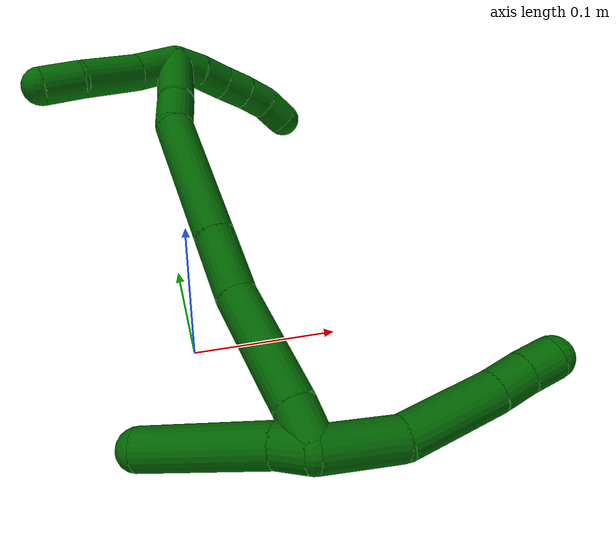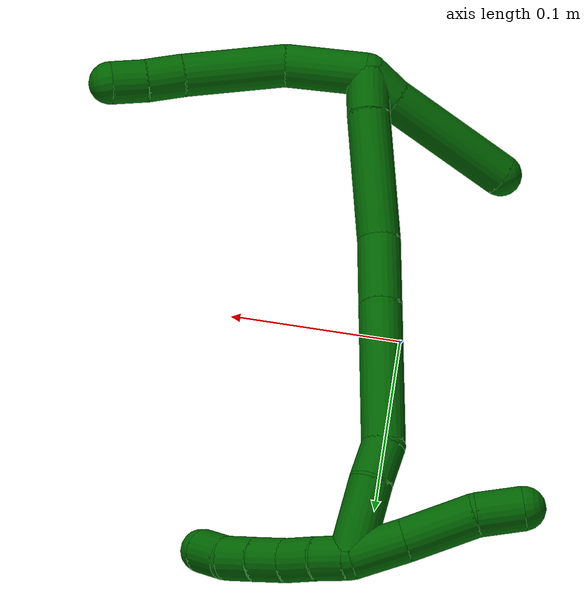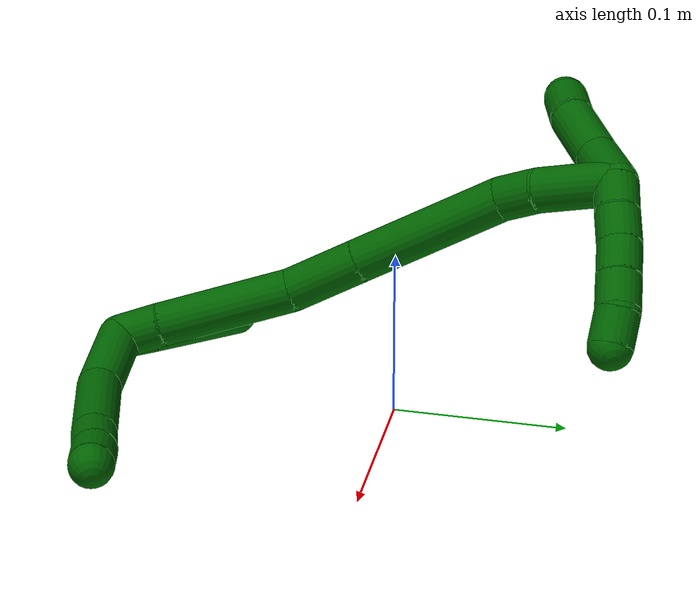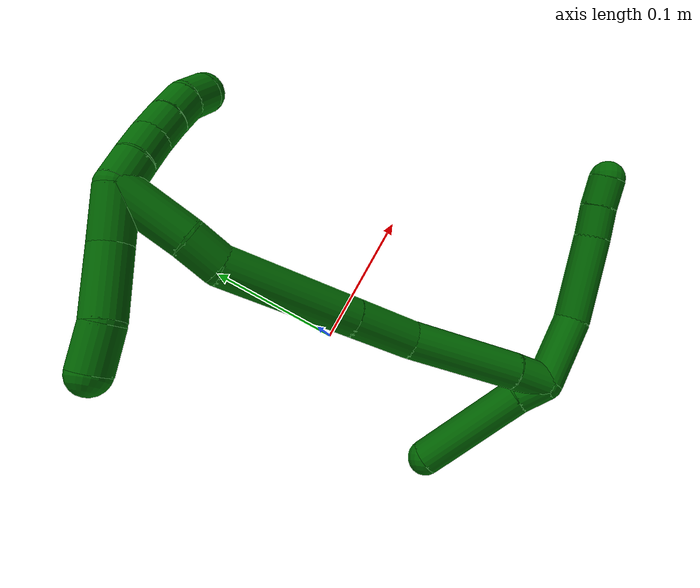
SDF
<sdf version="1.7">
 <world name="default">
  <model name="6">
   <static>0</static>
   <link name="6">
    <collision name="collision-cylinder-e_1_2_8">
     <pose>0.006693 -0.003443 -0.022748 2.99137 0.283094 2.16987</pose>
     <geometry><cylinder><radius>0.0125</radius><length>0.047922</length></cylinder></geometry>
     <surface>
      <friction><ode><mu>1.16</mu><mu2>1.16</mu2><slip1>0</slip1><slip2>0</slip2></ode></friction>
      <contact><ode><kp>1e+06</kp><kd>1</kd><max_vel>0</max_vel><min_depth>0.001</min_depth></ode></contact>
     </surface>
    </collision>
    <visual name="visual-cylinder-e_1_2_8">
     <pose>0.006693 -0.003443 -0.022748 2.99137 0.283094 2.16987</pose>
     <geometry><cylinder><radius>0.0125</radius><length>0.047922</length></cylinder></geometry>
     <material><ambient>0 0.392157 0.003922 1</ambient></material>
    </visual>
    <collision name="collision-cylinder-e_2_8_9">
     <pose>0.021248 -0.002167 -0.073855 -2.97668 0.266931 -2.03809</pose>
     <geometry><cylinder><radius>0.0125</radius><length>0.059608</length></cylinder></geometry>
     <surface>
      <friction><ode><mu>1.16</mu><mu2>1.16</mu2><slip1>0</slip1><slip2>0</slip2></ode></friction>
      <contact><ode><kp>1e+06</kp><kd>1</kd><max_vel>0</max_vel><min_depth>0.001</min_depth></ode></contact>
     </surface>
    </collision>
    <visual name="visual-cylinder-e_2_8_9">
     <pose>0.021248 -0.002167 -0.073855 -2.97668 0.266931 -2.03809</pose>
     <geometry><cylinder><radius>0.0125</radius><length>0.059608</length></cylinder></geometry>
     <material><ambient>0 0.392157 0.003922 1</ambient></material>
    </visual>
    <collision name="collision-cylinder-e_3_9_10">
     <pose>0.031934 0.005125 -0.112426 -2.89486 0.26207 -1.63172</pose>
     <geometry><cylinder><radius>0.0125</radius><length>0.021807</length></cylinder></geometry>
     <surface>
      <friction><ode><mu>1.16</mu><mu2>1.16</mu2><slip1>0</slip1><slip2>0</slip2></ode></friction>
      <contact><ode><kp>1e+06</kp><kd>1</kd><max_vel>0</max_vel><min_depth>0.001</min_depth></ode></contact>
     </surface>
    </collision>
    <visual name="visual-cylinder-e_3_9_10">
     <pose>0.031934 0.005125 -0.112426 -2.89486 0.26207 -1.63172</pose>
     <geometry><cylinder><radius>0.0125</radius><length>0.021807</length></cylinder></geometry>
     <material><ambient>0 0.392157 0.003922 1</ambient></material>
    </visual>
    <collision name="collision-cylinder-e_4_10_6">
     <pose>0.038196 0.009683 -0.132176 -2.93632 0.339128 -2.05841</pose>
     <geometry><cylinder><radius>0.0125</radius><length>0.020663</length></cylinder></geometry>
     <surface>
      <friction><ode><mu>1.16</mu><mu2>1.16</mu2><slip1>0</slip1><slip2>0</slip2></ode></friction>
      <contact><ode><kp>1e+06</kp><kd>1</kd><max_vel>0</max_vel><min_depth>0.001</min_depth></ode></contact>
     </surface>
    </collision>
    <visual name="visual-cylinder-e_4_10_6">
     <pose>0.038196 0.009683 -0.132176 -2.93632 0.339128 -2.05841</pose>
     <geometry><cylinder><radius>0.0125</radius><length>0.020663</length></cylinder></geometry>
     <material><ambient>0 0.392157 0.003922 1</ambient></material>
    </visual>
    <collision name="collision-cylinder-e_1_2_11">
     <pose>-0.008485 0.002896 0.005422 -0.49057 -0.94383 0.254144</pose>
     <geometry><cylinder><radius>0.0125</radius><length>0.020955</length></cylinder></geometry>
     <surface>
      <friction><ode><mu>1.16</mu><mu2>1.16</mu2><slip1>0</slip1><slip2>0</slip2></ode></friction>
      <contact><ode><kp>1e+06</kp><kd>1</kd><max_vel>0</max_vel><min_depth>0.001</min_depth></ode></contact>
     </surface>
    </collision>
    <visual name="visual-cylinder-e_1_2_11">
     <pose>-0.008485 0.002896 0.005422 -0.49057 -0.94383 0.254144</pose>
     <geometry><cylinder><radius>0.0125</radius><length>0.020955</length></cylinder></geometry>
     <material><ambient>0 0.392157 0.003922 1</ambient></material>
    </visual>
    <collision name="collision-cylinder-e_2_11_5">
     <pose>-0.047817 0.011849 0.034798 -0.247685 -0.895465 0.119423</pose>
     <geometry><cylinder><radius>0.0125</radius><length>0.079045</length></cylinder></geometry>
     <surface>
      <friction><ode><mu>1.16</mu><mu2>1.16</mu2><slip1>0</slip1><slip2>0</slip2></ode></friction>
      <contact><ode><kp>1e+06</kp><kd>1</kd><max_vel>0</max_vel><min_depth>0.001</min_depth></ode></contact>
     </surface>
    </collision>
    <visual name="visual-cylinder-e_2_11_5">
     <pose>-0.047817 0.011849 0.034798 -0.247685 -0.895465 0.119423</pose>
     <geometry><cylinder><radius>0.0125</radius><length>0.079045</length></cylinder></geometry>
     <material><ambient>0 0.392157 0.003922 1</ambient></material>
    </visual>
    <collision name="collision-cylinder-e_1_2_12">
     <pose>-0.005791 0.011104 -0.001176 -1.67635 -0.478448 0.529475</pose>
     <geometry><cylinder><radius>0.0125</radius><length>0.025157</length></cylinder></geometry>
     <surface>
      <friction><ode><mu>1.16</mu><mu2>1.16</mu2><slip1>0</slip1><slip2>0</slip2></ode></friction>
      <contact><ode><kp>1e+06</kp><kd>1</kd><max_vel>0</max_vel><min_depth>0.001</min_depth></ode></contact>
     </surface>
    </collision>
    <visual name="visual-cylinder-e_1_2_12">
     <pose>-0.005791 0.011104 -0.001176 -1.67635 -0.478448 0.529475</pose>
     <geometry><cylinder><radius>0.0125</radius><length>0.025157</length></cylinder></geometry>
     <material><ambient>0 0.392157 0.003922 1</ambient></material>
    </visual>
    <collision name="collision-cylinder-e_2_12_13">
     <pose>-0.031545 0.05475 -0.004604 -1.63986 -0.54918 0.586338</pose>
     <geometry><cylinder><radius>0.0125</radius><length>0.076487</length></cylinder></geometry>
     <surface>
      <friction><ode><mu>1.16</mu><mu2>1.16</mu2><slip1>0</slip1><slip2>0</slip2></ode></friction>
      <contact><ode><kp>1e+06</kp><kd>1</kd><max_vel>0</max_vel><min_depth>0.001</min_depth></ode></contact>
     </surface>
    </collision>
    <visual name="visual-cylinder-e_2_12_13">
     <pose>-0.031545 0.05475 -0.004604 -1.63986 -0.54918 0.586338</pose>
     <geometry><cylinder><radius>0.0125</radius><length>0.076487</length></cylinder></geometry>
     <material><ambient>0 0.392157 0.003922 1</ambient></material>
    </visual>
    <collision name="collision-cylinder-e_3_13_14">
     <pose>-0.058694 0.10725 -0.008319 -1.64399 -0.344777 0.370408</pose>
     <geometry><cylinder><radius>0.0125</radius><length>0.042525</length></cylinder></geometry>
     <surface>
      <friction><ode><mu>1.16</mu><mu2>1.16</mu2><slip1>0</slip1><slip2>0</slip2></ode></friction>
      <contact><ode><kp>1e+06</kp><kd>1</kd><max_vel>0</max_vel><min_depth>0.001</min_depth></ode></contact>
     </surface>
    </collision>
    <visual name="visual-cylinder-e_3_13_14">
     <pose>-0.058694 0.10725 -0.008319 -1.64399 -0.344777 0.370408</pose>
     <geometry><cylinder><radius>0.0125</radius><length>0.042525</length></cylinder></geometry>
     <material><ambient>0 0.392157 0.003922 1</ambient></material>
    </visual>
    <collision name="collision-cylinder-e_4_14_15">
     <pose>-0.080831 0.168428 -0.012849 -1.64505 -0.347055 0.373238</pose>
     <geometry><cylinder><radius>0.0125</radius><length>0.087911</length></cylinder></geometry>
     <surface>
      <friction><ode><mu>1.16</mu><mu2>1.16</mu2><slip1>0</slip1><slip2>0</slip2></ode></friction>
      <contact><ode><kp>1e+06</kp><kd>1</kd><max_vel>0</max_vel><min_depth>0.001</min_depth></ode></contact>
     </surface>
    </collision>
    <visual name="visual-cylinder-e_4_14_15">
     <pose>-0.080831 0.168428 -0.012849 -1.64505 -0.347055 0.373238</pose>
     <geometry><cylinder><radius>0.0125</radius><length>0.087911</length></cylinder></geometry>
     <material><ambient>0 0.392157 0.003922 1</ambient></material>
    </visual>
    <collision name="collision-cylinder-e_5_15_16">
     <pose>-0.098812 0.21981 -0.020276 -1.97616 -0.267509 0.402798</pose>
     <geometry><cylinder><radius>0.0125</radius><length>0.022931</length></cylinder></geometry>
     <surface>
      <friction><ode><mu>1.16</mu><mu2>1.16</mu2><slip1>0</slip1><slip2>0</slip2></ode></friction>
      <contact><ode><kp>1e+06</kp><kd>1</kd><max_vel>0</max_vel><min_depth>0.001</min_depth></ode></contact>
     </surface>
    </collision>
    <visual name="visual-cylinder-e_5_15_16">
     <pose>-0.098812 0.21981 -0.020276 -1.97616 -0.267509 0.402798</pose>
     <geometry><cylinder><radius>0.0125</radius><length>0.022931</length></cylinder></geometry>
     <material><ambient>0 0.392157 0.003922 1</ambient></material>
    </visual>
    <collision name="collision-cylinder-e_6_16_1">
     <pose>-0.111364 0.248478 -0.033174 -2.00303 -0.437023 0.667978</pose>
     <geometry><cylinder><radius>0.0125</radius><length>0.044989</length></cylinder></geometry>
     <surface>
      <friction><ode><mu>1.16</mu><mu2>1.16</mu2><slip1>0</slip1><slip2>0</slip2></ode></friction>
      <contact><ode><kp>1e+06</kp><kd>1</kd><max_vel>0</max_vel><min_depth>0.001</min_depth></ode></contact>
     </surface>
    </collision>
    <visual name="visual-cylinder-e_6_16_1">
     <pose>-0.111364 0.248478 -0.033174 -2.00303 -0.437023 0.667978</pose>
     <geometry><cylinder><radius>0.0125</radius><length>0.044989</length></cylinder></geometry>
     <material><ambient>0 0.392157 0.003922 1</ambient></material>
    </visual>
    <collision name="collision-cylinder-e_1_1_17">
     <pose>-0.121464 0.264184 -0.051294 2.85723 -0.057945 -0.399511</pose>
     <geometry><cylinder><radius>0.0125</radius><length>0.02</length></cylinder></geometry>
     <surface>
      <friction><ode><mu>1.16</mu><mu2>1.16</mu2><slip1>0</slip1><slip2>0</slip2></ode></friction>
      <contact><ode><kp>1e+06</kp><kd>1</kd><max_vel>0</max_vel><min_depth>0.001</min_depth></ode></contact>
     </surface>
    </collision>
    <visual name="visual-cylinder-e_1_1_17">
     <pose>-0.121464 0.264184 -0.051294 2.85723 -0.057945 -0.399511</pose>
     <geometry><cylinder><radius>0.0125</radius><length>0.02</length></cylinder></geometry>
     <material><ambient>0 0.392157 0.003922 1</ambient></material>
    </visual>
    <collision name="collision-cylinder-e_2_17_18">
     <pose>-0.123679 0.258072 -0.070169 2.79933 -0.164371 -0.88955</pose>
     <geometry><cylinder><radius>0.0125</radius><length>0.02</length></cylinder></geometry>
     <surface>
      <friction><ode><mu>1.16</mu><mu2>1.16</mu2><slip1>0</slip1><slip2>0</slip2></ode></friction>
      <contact><ode><kp>1e+06</kp><kd>1</kd><max_vel>0</max_vel><min_depth>0.001</min_depth></ode></contact>
     </surface>
    </collision>
    <visual name="visual-cylinder-e_2_17_18">
     <pose>-0.123679 0.258072 -0.070169 2.79933 -0.164371 -0.88955</pose>
     <geometry><cylinder><radius>0.0125</radius><length>0.02</length></cylinder></geometry>
     <material><ambient>0 0.392157 0.003922 1</ambient></material>
    </visual>
    <collision name="collision-cylinder-e_3_18_19">
     <pose>-0.126054 0.251138 -0.088754 2.76982 -0.073948 -0.388438</pose>
     <geometry><cylinder><radius>0.0125</radius><length>0.02</length></cylinder></geometry>
     <surface>
      <friction><ode><mu>1.16</mu><mu2>1.16</mu2><slip1>0</slip1><slip2>0</slip2></ode></friction>
      <contact><ode><kp>1e+06</kp><kd>1</kd><max_vel>0</max_vel><min_depth>0.001</min_depth></ode></contact>
     </surface>
    </collision>
    <visual name="visual-cylinder-e_3_18_19">
     <pose>-0.126054 0.251138 -0.088754 2.76982 -0.073948 -0.388438</pose>
     <geometry><cylinder><radius>0.0125</radius><length>0.02</length></cylinder></geometry>
     <material><ambient>0 0.392157 0.003922 1</ambient></material>
    </visual>
    <collision name="collision-cylinder-e_4_19_20">
     <pose>-0.127995 0.243471 -0.107111 2.72198 -0.120536 -0.552264</pose>
     <geometry><cylinder><radius>0.0125</radius><length>0.02</length></cylinder></geometry>
     <surface>
      <friction><ode><mu>1.16</mu><mu2>1.16</mu2><slip1>0</slip1><slip2>0</slip2></ode></friction>
      <contact><ode><kp>1e+06</kp><kd>1</kd><max_vel>0</max_vel><min_depth>0.001</min_depth></ode></contact>
     </surface>
    </collision>
    <visual name="visual-cylinder-e_4_19_20">
     <pose>-0.127995 0.243471 -0.107111 2.72198 -0.120536 -0.552264</pose>
     <geometry><cylinder><radius>0.0125</radius><length>0.02</length></cylinder></geometry>
     <material><ambient>0 0.392157 0.003922 1</ambient></material>
    </visual>
    <collision name="collision-cylinder-e_5_20_4">
     <pose>-0.130675 0.233063 -0.123749 2.44271 -0.14827 -0.402131</pose>
     <geometry><cylinder><radius>0.0125</radius><length>0.02</length></cylinder></geometry>
     <surface>
      <friction><ode><mu>1.16</mu><mu2>1.16</mu2><slip1>0</slip1><slip2>0</slip2></ode></friction>
      <contact><ode><kp>1e+06</kp><kd>1</kd><max_vel>0</max_vel><min_depth>0.001</min_depth></ode></contact>
     </surface>
    </collision>
    <visual name="visual-cylinder-e_5_20_4">
     <pose>-0.130675 0.233063 -0.123749 2.44271 -0.14827 -0.402131</pose>
     <geometry><cylinder><radius>0.0125</radius><length>0.02</length></cylinder></geometry>
     <material><ambient>0 0.392157 0.003922 1</ambient></material>
    </visual>
    <collision name="collision-cylinder-e_1_1_21">
     <pose>-0.121611 0.263524 -0.026011 0.216955 -0.045151 -0.004918</pose>
     <geometry><cylinder><radius>0.0125</radius><length>0.032187</length></cylinder></geometry>
     <surface>
      <friction><ode><mu>1.16</mu><mu2>1.16</mu2><slip1>0</slip1><slip2>0</slip2></ode></friction>
      <contact><ode><kp>1e+06</kp><kd>1</kd><max_vel>0</max_vel><min_depth>0.001</min_depth></ode></contact>
     </surface>
    </collision>
    <visual name="visual-cylinder-e_1_1_21">
     <pose>-0.121611 0.263524 -0.026011 0.216955 -0.045151 -0.004918</pose>
     <geometry><cylinder><radius>0.0125</radius><length>0.032187</length></cylinder></geometry>
     <material><ambient>0 0.392157 0.003922 1</ambient></material>
    </visual>
    <collision name="collision-cylinder-e_2_21_22">
     <pose>-0.121119 0.256741 0.010117 0.161222 0.058795 0.004751</pose>
     <geometry><cylinder><radius>0.0125</radius><length>0.041465</length></cylinder></geometry>
     <surface>
      <friction><ode><mu>1.16</mu><mu2>1.16</mu2><slip1>0</slip1><slip2>0</slip2></ode></friction>
      <contact><ode><kp>1e+06</kp><kd>1</kd><max_vel>0</max_vel><min_depth>0.001</min_depth></ode></contact>
     </surface>
    </collision>
    <visual name="visual-cylinder-e_2_21_22">
     <pose>-0.121119 0.256741 0.010117 0.161222 0.058795 0.004751</pose>
     <geometry><cylinder><radius>0.0125</radius><length>0.041465</length></cylinder></geometry>
     <material><ambient>0 0.392157 0.003922 1</ambient></material>
    </visual>
    <collision name="collision-cylinder-e_3_22_3">
     <pose>-0.122229 0.251974 0.043431 0.111622 -0.177704 -0.009954</pose>
     <geometry><cylinder><radius>0.0125</radius><length>0.026348</length></cylinder></geometry>
     <surface>
      <friction><ode><mu>1.16</mu><mu2>1.16</mu2><slip1>0</slip1><slip2>0</slip2></ode></friction>
      <contact><ode><kp>1e+06</kp><kd>1</kd><max_vel>0</max_vel><min_depth>0.001</min_depth></ode></contact>
     </surface>
    </collision>
    <visual name="visual-cylinder-e_3_22_3">
     <pose>-0.122229 0.251974 0.043431 0.111622 -0.177704 -0.009954</pose>
     <geometry><cylinder><radius>0.0125</radius><length>0.026348</length></cylinder></geometry>
     <material><ambient>0 0.392157 0.003922 1</ambient></material>
    </visual>
    <collision name="collision-sphere-3">
     <pose>-0.124558 0.25053 0.056317 0 -0 0</pose>
     <geometry><sphere><radius>0.0125</radius></sphere></geometry>
     <surface>
      <friction><ode><mu>1.16</mu><mu2>1.16</mu2><slip1>0</slip1><slip2>0</slip2></ode></friction>
      <contact><ode><kp>1e+06</kp><kd>1</kd><max_vel>0</max_vel><min_depth>0.001</min_depth></ode></contact>
     </surface>
    </collision>
    <visual name="visual-sphere-3">
     <pose>-0.124558 0.25053 0.056317 0 -0 0</pose>
     <geometry><sphere><radius>0.0125</radius></sphere></geometry>
     <material><ambient>0 0.392157 0.003922 1</ambient></material>
    </visual>
    <collision name="collision-sphere-22">
     <pose>-0.119901 0.253418 0.030545 0 -0 0</pose>
     <geometry><sphere><radius>0.0125</radius></sphere></geometry>
     <surface>
      <friction><ode><mu>1.16</mu><mu2>1.16</mu2><slip1>0</slip1><slip2>0</slip2></ode></friction>
      <contact><ode><kp>1e+06</kp><kd>1</kd><max_vel>0</max_vel><min_depth>0.001</min_depth></ode></contact>
     </surface>
    </collision>
    <visual name="visual-sphere-22">
     <pose>-0.119901 0.253418 0.030545 0 -0 0</pose>
     <geometry><sphere><radius>0.0125</radius></sphere></geometry>
     <material><ambient>0 0.392157 0.003922 1</ambient></material>
    </visual>
    <collision name="collision-sphere-21">
     <pose>-0.122337 0.260063 -0.010311 0 -0 0</pose>
     <geometry><sphere><radius>0.0125</radius></sphere></geometry>
     <surface>
      <friction><ode><mu>1.16</mu><mu2>1.16</mu2><slip1>0</slip1><slip2>0</slip2></ode></friction>
      <contact><ode><kp>1e+06</kp><kd>1</kd><max_vel>0</max_vel><min_depth>0.001</min_depth></ode></contact>
     </surface>
    </collision>
    <visual name="visual-sphere-21">
     <pose>-0.122337 0.260063 -0.010311 0 -0 0</pose>
     <geometry><sphere><radius>0.0125</radius></sphere></geometry>
     <material><ambient>0 0.392157 0.003922 1</ambient></material>
    </visual>
    <collision name="collision-sphere-4">
     <pose>-0.132152 0.2267 -0.131321 0 -0 0</pose>
     <geometry><sphere><radius>0.0125</radius></sphere></geometry>
     <surface>
      <friction><ode><mu>1.16</mu><mu2>1.16</mu2><slip1>0</slip1><slip2>0</slip2></ode></friction>
      <contact><ode><kp>1e+06</kp><kd>1</kd><max_vel>0</max_vel><min_depth>0.001</min_depth></ode></contact>
     </surface>
    </collision>
    <visual name="visual-sphere-4">
     <pose>-0.132152 0.2267 -0.131321 0 -0 0</pose>
     <geometry><sphere><radius>0.0125</radius></sphere></geometry>
     <material><ambient>0 0.392157 0.003922 1</ambient></material>
    </visual>
    <collision name="collision-sphere-20">
     <pose>-0.129198 0.239426 -0.116177 0 -0 0</pose>
     <geometry><sphere><radius>0.0125</radius></sphere></geometry>
     <surface>
      <friction><ode><mu>1.16</mu><mu2>1.16</mu2><slip1>0</slip1><slip2>0</slip2></ode></friction>
      <contact><ode><kp>1e+06</kp><kd>1</kd><max_vel>0</max_vel><min_depth>0.001</min_depth></ode></contact>
     </surface>
    </collision>
    <visual name="visual-sphere-20">
     <pose>-0.129198 0.239426 -0.116177 0 -0 0</pose>
     <geometry><sphere><radius>0.0125</radius></sphere></geometry>
     <material><ambient>0 0.392157 0.003922 1</ambient></material>
    </visual>
    <collision name="collision-sphere-11">
     <pose>-0.016969 0.005792 0.010844 0 -0 0</pose>
     <geometry><sphere><radius>0.0125</radius></sphere></geometry>
     <surface>
      <friction><ode><mu>1.16</mu><mu2>1.16</mu2><slip1>0</slip1><slip2>0</slip2></ode></friction>
      <contact><ode><kp>1e+06</kp><kd>1</kd><max_vel>0</max_vel><min_depth>0.001</min_depth></ode></contact>
     </surface>
    </collision>
    <visual name="visual-sphere-11">
     <pose>-0.016969 0.005792 0.010844 0 -0 0</pose>
     <geometry><sphere><radius>0.0125</radius></sphere></geometry>
     <material><ambient>0 0.392157 0.003922 1</ambient></material>
    </visual>
    <collision name="collision-sphere-6">
     <pose>0.041633 0.011669 -0.141715 0 -0 0</pose>
     <geometry><sphere><radius>0.0125</radius></sphere></geometry>
     <surface>
      <friction><ode><mu>1.16</mu><mu2>1.16</mu2><slip1>0</slip1><slip2>0</slip2></ode></friction>
      <contact><ode><kp>1e+06</kp><kd>1</kd><max_vel>0</max_vel><min_depth>0.001</min_depth></ode></contact>
     </surface>
    </collision>
    <visual name="visual-sphere-6">
     <pose>0.041633 0.011669 -0.141715 0 -0 0</pose>
     <geometry><sphere><radius>0.0125</radius></sphere></geometry>
     <material><ambient>0 0.392157 0.003922 1</ambient></material>
    </visual>
    <collision name="collision-sphere-10">
     <pose>0.034759 0.007697 -0.122638 0 -0 0</pose>
     <geometry><sphere><radius>0.0125</radius></sphere></geometry>
     <surface>
      <friction><ode><mu>1.16</mu><mu2>1.16</mu2><slip1>0</slip1><slip2>0</slip2></ode></friction>
      <contact><ode><kp>1e+06</kp><kd>1</kd><max_vel>0</max_vel><min_depth>0.001</min_depth></ode></contact>
     </surface>
    </collision>
    <visual name="visual-sphere-10">
     <pose>0.034759 0.007697 -0.122638 0 -0 0</pose>
     <geometry><sphere><radius>0.0125</radius></sphere></geometry>
     <material><ambient>0 0.392157 0.003922 1</ambient></material>
    </visual>
    <collision name="collision-sphere-9">
     <pose>0.029109 0.002553 -0.102213 0 -0 0</pose>
     <geometry><sphere><radius>0.0125</radius></sphere></geometry>
     <surface>
      <friction><ode><mu>1.16</mu><mu2>1.16</mu2><slip1>0</slip1><slip2>0</slip2></ode></friction>
      <contact><ode><kp>1e+06</kp><kd>1</kd><max_vel>0</max_vel><min_depth>0.001</min_depth></ode></contact>
     </surface>
    </collision>
    <visual name="visual-sphere-9">
     <pose>0.029109 0.002553 -0.102213 0 -0 0</pose>
     <geometry><sphere><radius>0.0125</radius></sphere></geometry>
     <material><ambient>0 0.392157 0.003922 1</ambient></material>
    </visual>
    <collision name="collision-sphere-2">
     <geometry><sphere><radius>0.0125</radius></sphere></geometry>
     <surface>
      <friction><ode><mu>1.16</mu><mu2>1.16</mu2><slip1>0</slip1><slip2>0</slip2></ode></friction>
      <contact><ode><kp>1e+06</kp><kd>1</kd><max_vel>0</max_vel><min_depth>0.001</min_depth></ode></contact>
     </surface>
    </collision>
    <visual name="visual-sphere-2">
     <geometry><sphere><radius>0.0125</radius></sphere></geometry>
     <material><ambient>0 0.392157 0.003922 1</ambient></material>
    </visual>
    <collision name="collision-sphere-19">
     <pose>-0.126793 0.247515 -0.098045 0 -0 0</pose>
     <geometry><sphere><radius>0.0125</radius></sphere></geometry>
     <surface>
      <friction><ode><mu>1.16</mu><mu2>1.16</mu2><slip1>0</slip1><slip2>0</slip2></ode></friction>
      <contact><ode><kp>1e+06</kp><kd>1</kd><max_vel>0</max_vel><min_depth>0.001</min_depth></ode></contact>
     </surface>
    </collision>
    <visual name="visual-sphere-19">
     <pose>-0.126793 0.247515 -0.098045 0 -0 0</pose>
     <geometry><sphere><radius>0.0125</radius></sphere></geometry>
     <material><ambient>0 0.392157 0.003922 1</ambient></material>
    </visual>
    <collision name="collision-sphere-8">
     <pose>0.013386 -0.006886 -0.045496 0 -0 0</pose>
     <geometry><sphere><radius>0.0125</radius></sphere></geometry>
     <surface>
      <friction><ode><mu>1.16</mu><mu2>1.16</mu2><slip1>0</slip1><slip2>0</slip2></ode></friction>
      <contact><ode><kp>1e+06</kp><kd>1</kd><max_vel>0</max_vel><min_depth>0.001</min_depth></ode></contact>
     </surface>
    </collision>
    <visual name="visual-sphere-8">
     <pose>0.013386 -0.006886 -0.045496 0 -0 0</pose>
     <geometry><sphere><radius>0.0125</radius></sphere></geometry>
     <material><ambient>0 0.392157 0.003922 1</ambient></material>
    </visual>
    <collision name="collision-sphere-5">
     <pose>-0.078664 0.017907 0.058752 0 -0 0</pose>
     <geometry><sphere><radius>0.0125</radius></sphere></geometry>
     <surface>
      <friction><ode><mu>1.16</mu><mu2>1.16</mu2><slip1>0</slip1><slip2>0</slip2></ode></friction>
      <contact><ode><kp>1e+06</kp><kd>1</kd><max_vel>0</max_vel><min_depth>0.001</min_depth></ode></contact>
     </surface>
    </collision>
    <visual name="visual-sphere-5">
     <pose>-0.078664 0.017907 0.058752 0 -0 0</pose>
     <geometry><sphere><radius>0.0125</radius></sphere></geometry>
     <material><ambient>0 0.392157 0.003922 1</ambient></material>
    </visual>
    <collision name="collision-sphere-12">
     <pose>-0.011582 0.022208 -0.002353 0 -0 0</pose>
     <geometry><sphere><radius>0.0125</radius></sphere></geometry>
     <surface>
      <friction><ode><mu>1.16</mu><mu2>1.16</mu2><slip1>0</slip1><slip2>0</slip2></ode></friction>
      <contact><ode><kp>1e+06</kp><kd>1</kd><max_vel>0</max_vel><min_depth>0.001</min_depth></ode></contact>
     </surface>
    </collision>
    <visual name="visual-sphere-12">
     <pose>-0.011582 0.022208 -0.002353 0 -0 0</pose>
     <geometry><sphere><radius>0.0125</radius></sphere></geometry>
     <material><ambient>0 0.392157 0.003922 1</ambient></material>
    </visual>
    <collision name="collision-sphere-13">
     <pose>-0.051507 0.087292 -0.006855 0 -0 0</pose>
     <geometry><sphere><radius>0.0125</radius></sphere></geometry>
     <surface>
      <friction><ode><mu>1.16</mu><mu2>1.16</mu2><slip1>0</slip1><slip2>0</slip2></ode></friction>
      <contact><ode><kp>1e+06</kp><kd>1</kd><max_vel>0</max_vel><min_depth>0.001</min_depth></ode></contact>
     </surface>
    </collision>
    <visual name="visual-sphere-13">
     <pose>-0.051507 0.087292 -0.006855 0 -0 0</pose>
     <geometry><sphere><radius>0.0125</radius></sphere></geometry>
     <material><ambient>0 0.392157 0.003922 1</ambient></material>
    </visual>
    <collision name="collision-sphere-14">
     <pose>-0.06588 0.127207 -0.009782 0 -0 0</pose>
     <geometry><sphere><radius>0.0125</radius></sphere></geometry>
     <surface>
      <friction><ode><mu>1.16</mu><mu2>1.16</mu2><slip1>0</slip1><slip2>0</slip2></ode></friction>
      <contact><ode><kp>1e+06</kp><kd>1</kd><max_vel>0</max_vel><min_depth>0.001</min_depth></ode></contact>
     </surface>
    </collision>
    <visual name="visual-sphere-14">
     <pose>-0.06588 0.127207 -0.009782 0 -0 0</pose>
     <geometry><sphere><radius>0.0125</radius></sphere></geometry>
     <material><ambient>0 0.392157 0.003922 1</ambient></material>
    </visual>
    <collision name="collision-sphere-15">
     <pose>-0.095782 0.209649 -0.015915 0 -0 0</pose>
     <geometry><sphere><radius>0.0125</radius></sphere></geometry>
     <surface>
      <friction><ode><mu>1.16</mu><mu2>1.16</mu2><slip1>0</slip1><slip2>0</slip2></ode></friction>
      <contact><ode><kp>1e+06</kp><kd>1</kd><max_vel>0</max_vel><min_depth>0.001</min_depth></ode></contact>
     </surface>
    </collision>
    <visual name="visual-sphere-15">
     <pose>-0.095782 0.209649 -0.015915 0 -0 0</pose>
     <geometry><sphere><radius>0.0125</radius></sphere></geometry>
     <material><ambient>0 0.392157 0.003922 1</ambient></material>
    </visual>
    <collision name="collision-sphere-16">
     <pose>-0.101843 0.229972 -0.024637 0 -0 0</pose>
     <geometry><sphere><radius>0.0125</radius></sphere></geometry>
     <surface>
      <friction><ode><mu>1.16</mu><mu2>1.16</mu2><slip1>0</slip1><slip2>0</slip2></ode></friction>
      <contact><ode><kp>1e+06</kp><kd>1</kd><max_vel>0</max_vel><min_depth>0.001</min_depth></ode></contact>
     </surface>
    </collision>
    <visual name="visual-sphere-16">
     <pose>-0.101843 0.229972 -0.024637 0 -0 0</pose>
     <geometry><sphere><radius>0.0125</radius></sphere></geometry>
     <material><ambient>0 0.392157 0.003922 1</ambient></material>
    </visual>
    <collision name="collision-sphere-1">
     <pose>-0.120884 0.266984 -0.041711 0 -0 0</pose>
     <geometry><sphere><radius>0.0125</radius></sphere></geometry>
     <surface>
      <friction><ode><mu>1.16</mu><mu2>1.16</mu2><slip1>0</slip1><slip2>0</slip2></ode></friction>
      <contact><ode><kp>1e+06</kp><kd>1</kd><max_vel>0</max_vel><min_depth>0.001</min_depth></ode></contact>
     </surface>
    </collision>
    <visual name="visual-sphere-1">
     <pose>-0.120884 0.266984 -0.041711 0 -0 0</pose>
     <geometry><sphere><radius>0.0125</radius></sphere></geometry>
     <material><ambient>0 0.392157 0.003922 1</ambient></material>
    </visual>
    <collision name="collision-sphere-18">
     <pose>-0.125315 0.254761 -0.079462 0 -0 0</pose>
     <geometry><sphere><radius>0.0125</radius></sphere></geometry>
     <surface>
      <friction><ode><mu>1.16</mu><mu2>1.16</mu2><slip1>0</slip1><slip2>0</slip2></ode></friction>
      <contact><ode><kp>1e+06</kp><kd>1</kd><max_vel>0</max_vel><min_depth>0.001</min_depth></ode></contact>
     </surface>
    </collision>
    <visual name="visual-sphere-18">
     <pose>-0.125315 0.254761 -0.079462 0 -0 0</pose>
     <geometry><sphere><radius>0.0125</radius></sphere></geometry>
     <material><ambient>0 0.392157 0.003922 1</ambient></material>
    </visual>
    <collision name="collision-sphere-17">
     <pose>-0.122043 0.261383 -0.060876 0 -0 0</pose>
     <geometry><sphere><radius>0.0125</radius></sphere></geometry>
     <surface>
      <friction><ode><mu>1.16</mu><mu2>1.16</mu2><slip1>0</slip1><slip2>0</slip2></ode></friction>
      <contact><ode><kp>1e+06</kp><kd>1</kd><max_vel>0</max_vel><min_depth>0.001</min_depth></ode></contact>
     </surface>
    </collision>
    <visual name="visual-sphere-17">
     <pose>-0.122043 0.261383 -0.060876 0 -0 0</pose>
     <geometry><sphere><radius>0.0125</radius></sphere></geometry>
     <material><ambient>0 0.392157 0.003922 1</ambient></material>
    </visual>
    <inertial>
     <pose>-0.0601 0.122445 -0.026305 0 -0 0</pose>
     <mass>0.75</mass>
     <inertia>
      <ixx>0.000156</ixx>
      <ixy>0</ixy>
      <ixz>0</ixz>
      <iyy>0.00014</iyy>
      <iyz>0</iyz>
      <izz>-4.6e-05</izz>
     </inertia>
    </inertial>
   </link>
   <pose>0.042241 -0.149375 0.053303 1.31335 -0.698745 -1.05576</pose>
  </model>
 </world>
</sdf>
